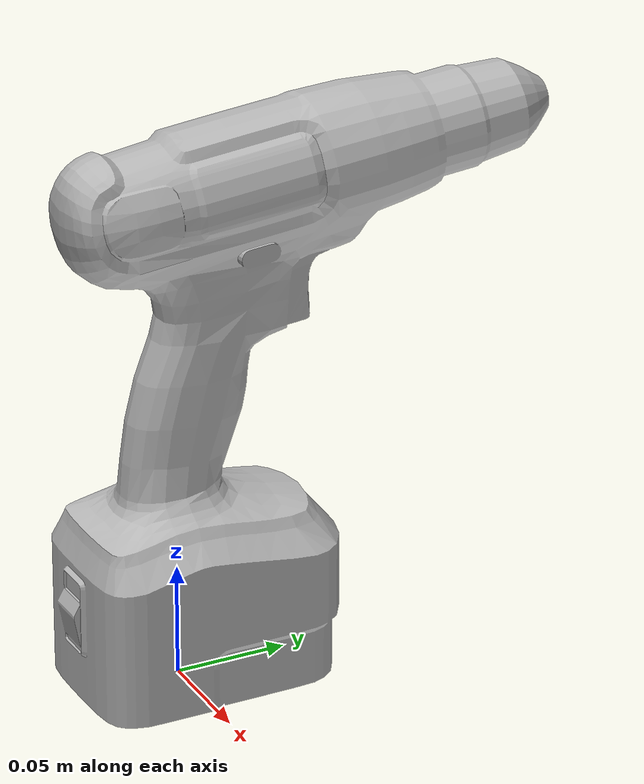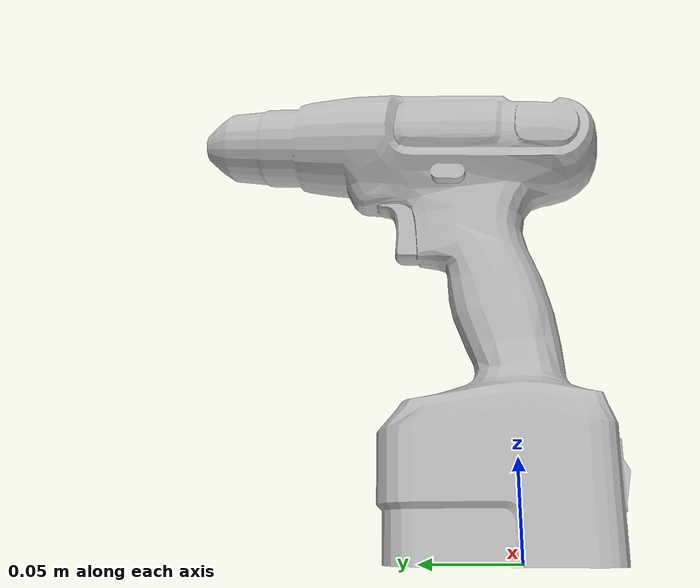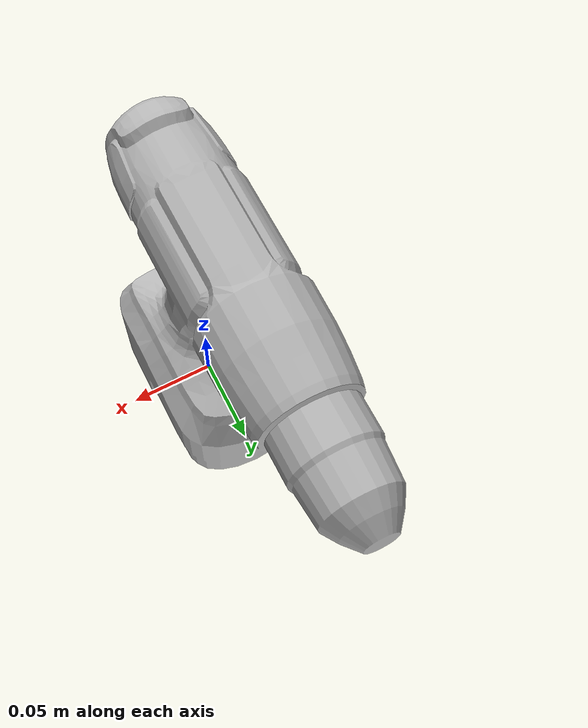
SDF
<?xml version="1.0" ?>
<sdf version="1.6">
    <model name="black_and_decker_cordless_drill">
        <static>true</static>
        <include>
            <uri>https://fuel.ignitionrobotics.org/1.0/OpenRobotics/models/Artifact Proximity Detector</uri>
        </include>
        <link name="link">
            <collision name="collision">
                <geometry>
                    <mesh>
                        <uri>meshes/drill.dae</uri>
                    </mesh>
                </geometry>
            </collision>
            <visual name="visual">
                <geometry>
                    <mesh>
                        <uri>meshes/drill.dae</uri>
                    </mesh>
                </geometry>
            </visual>
        </link>
    </model>
</sdf>

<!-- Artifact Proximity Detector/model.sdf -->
<sdf version="1.6">
    <model name="artifact_proximity_detector">
        <static>true</static>
        <pose>0 0 0 0 0 0</pose>
        <plugin filename="libignition-gazebo-performer-detector-system.so" name="ignition::gazebo::systems::PerformerDetector">
            <topic>/subt_performer_detector</topic>
            <header_data>
                <key>type</key>
                <value>artifact_proximity</value>
            </header_data>
            <geometry>
                <box>
                    <size>10 10 10</size>
                </box>
            </geometry>
        </plugin>
    </model>
</sdf>
